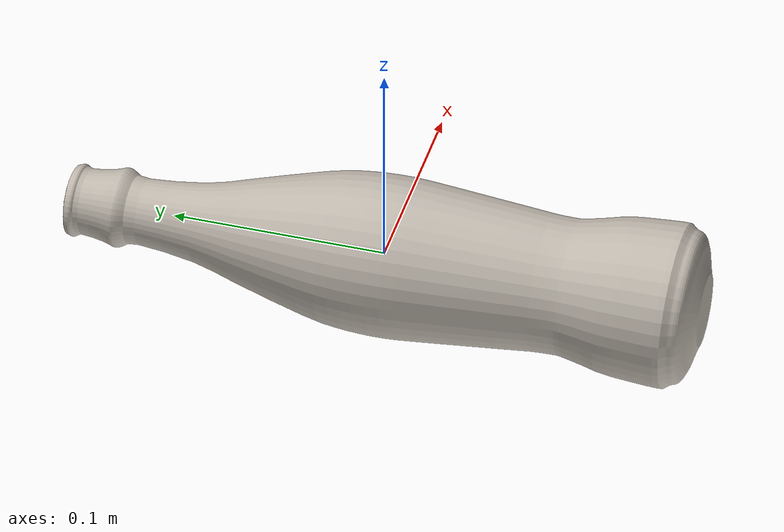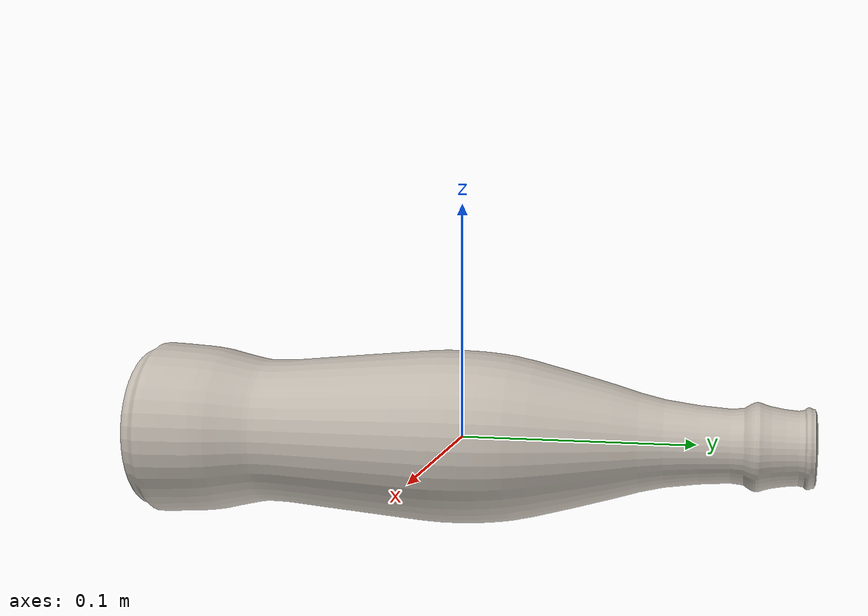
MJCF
<mujoco model="vase_e17f4ab5">
  <compiler angle="radian"/>
  <asset>
    <texture type="2d" name="vase_e17f4ab5_tex" file="vase_e17f4ab5_visual_0.png"/>
    <material name="vase_e17f4ab5_mat" texture="vase_e17f4ab5_tex"/>
    <mesh name="vase_e17f4ab5_visual" content_type="model/obj" file="vase_e17f4ab5_visual.obj" scale="-1 1.19033 1"/>
    <mesh name="vase_e17f4ab5_c0" content_type="model/obj" file="vase_e17f4ab5_c0.obj" scale="-1 1.19033 1"/>
    <mesh name="vase_e17f4ab5_c1" content_type="model/obj" file="vase_e17f4ab5_c1.obj" scale="-1 1.19033 1"/>
  </asset>
  <worldbody>
    <body name="vase_e17f4ab5">
      <freejoint/>
      <geom name="vase_e17f4ab5_visual" type="mesh" mesh="vase_e17f4ab5_visual" mass="1e-8" contype="0" conaffinity="0" group="2" material="vase_e17f4ab5_mat"/>
      <geom name="vase_e17f4ab5_c0" type="mesh" mesh="vase_e17f4ab5_c0" group="3" density="366.935" friction="0.9 0.05 0.005" condim="4" rgba="0.4 0.5 0.9 0.35"/>
      <geom name="vase_e17f4ab5_c1" type="mesh" mesh="vase_e17f4ab5_c1" group="3" density="366.935" friction="0.9 0.05 0.005" condim="4" rgba="0.4 0.5 0.9 0.35"/>
    </body>
  </worldbody>
</mujoco>
